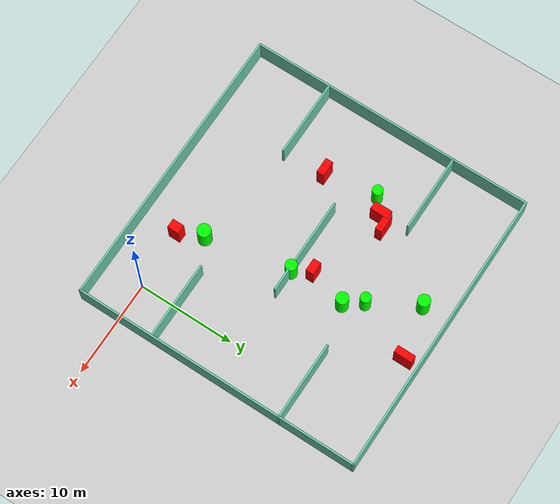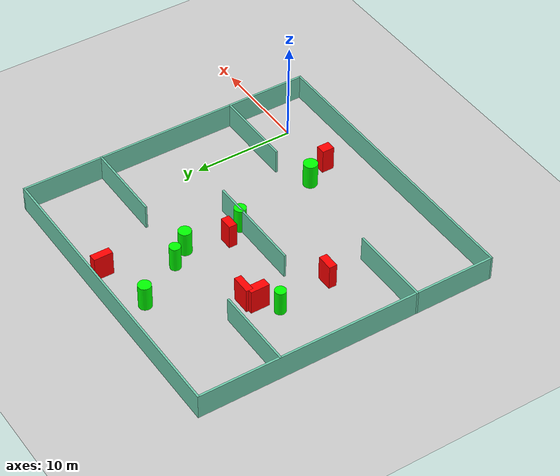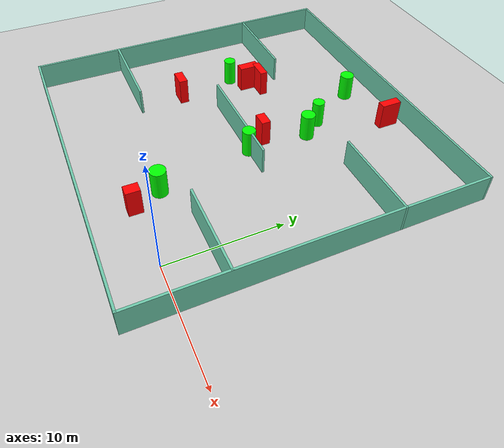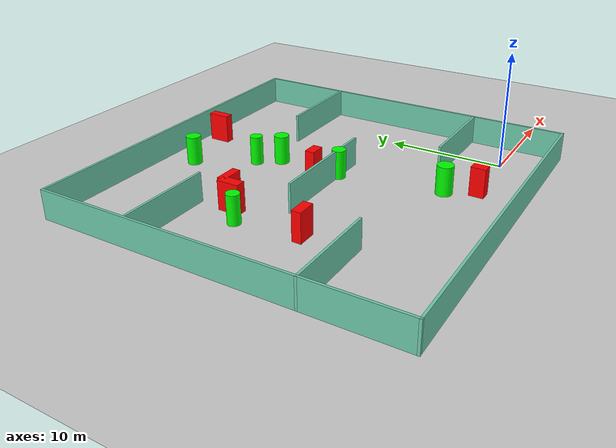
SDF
<sdf version="1.7">
 <world name="default">
  <light name="sun" type="directional">
   <pose>0 0 10 0 -0 0</pose>
   <diffuse>0.8 0.8 0.8 1</diffuse>
   <specular>0.2 0.2 0.2 1</specular>
   <attenuation>
    <range>1000</range>
    <constant>0.9</constant>
    <linear>0.01</linear>
    <quadratic>0.001</quadratic>
   </attenuation>
   <direction>-0.5 0.1 -0.9</direction>
   <spot><inner_angle>0</inner_angle><outer_angle>0</outer_angle><falloff>0</falloff></spot>
  </light>
  <model name="ground_plane">
   <static>1</static>
   <link name="link">
    <collision name="collision">
     <geometry><plane><normal>0 0 1</normal><size>100 100</size></plane></geometry>
     <surface>
      <contact><collide_bitmask>65535</collide_bitmask></contact>
      <friction><ode><mu>100</mu><mu2>50</mu2></ode></friction>
     </surface>
    </collision>
    <visual name="visual">
     <cast_shadows>0</cast_shadows>
     <geometry><plane><normal>0 0 1</normal><size>100 100</size></plane></geometry>
     <material>
      <script><uri>file://media/materials/scripts/gazebo.material</uri><name>Gazebo/Grey</name></script>
     </material>
    </visual>
   </link>
  </model>
  <gravity>0 0 -9.8</gravity>
  <magnetic_field>6e-06 2.3e-05 -4.2e-05</magnetic_field>
  <atmosphere type="adiabatic"/>
  <physics type="ode">
   <max_step_size>0.001</max_step_size>
   <real_time_factor>1</real_time_factor>
   <real_time_update_rate>1000</real_time_update_rate>
  </physics>
  <scene><ambient>0.4 0.4 0.4 1</ambient><background>0.7 0.7 0.7 1</background><shadows>1</shadows></scene>
  <spherical_coordinates>
   <surface_model>EARTH_WGS84</surface_model>
   <latitude_deg>0</latitude_deg>
   <longitude_deg>0</longitude_deg>
   <elevation>0</elevation>
   <heading_deg>0</heading_deg>
  </spherical_coordinates>
  <model name="my_base_walls">
   <link name="Wall_10">
    <collision name="Wall_10_Collision">
     <geometry><box><size>8.2 0.2 2.5</size></box></geometry>
     <pose>0 0 1.25 0 -0 0</pose>
    </collision>
    <visual name="Wall_10_Visual">
     <pose>0 0 1.25 0 -0 0</pose>
     <geometry><box><size>8.2 0.2 2.5</size></box></geometry>
     <material>
      <script><uri>file://media/materials/scripts/gazebo.material</uri><name>Gazebo/Grey</name></script>
      <ambient>0.435294 0.796078 0.67451 1</ambient>
     </material>
     <meta><layer>0</layer></meta>
    </visual>
    <pose>-11 -7 0 0 -0 0</pose>
   </link>
   <link name="Wall_12">
    <collision name="Wall_12_Collision">
     <geometry><box><size>8.2 0.2 2.5</size></box></geometry>
     <pose>0 0 1.25 0 -0 0</pose>
    </collision>
    <visual name="Wall_12_Visual">
     <pose>0 0 1.25 0 -0 0</pose>
     <geometry><box><size>8.2 0.2 2.5</size></box></geometry>
     <material>
      <script><uri>file://media/materials/scripts/gazebo.material</uri><name>Gazebo/Grey</name></script>
      <ambient>0.435294 0.796078 0.67451 1</ambient>
     </material>
     <meta><layer>0</layer></meta>
    </visual>
    <pose>-11 7 0 0 -0 0</pose>
   </link>
   <link name="Wall_14">
    <collision name="Wall_14_Collision">
     <geometry><box><size>8.2 0.2 2.5</size></box></geometry>
     <pose>0 0 1.25 0 -0 0</pose>
    </collision>
    <visual name="Wall_14_Visual">
     <pose>0 0 1.25 0 -0 0</pose>
     <geometry><box><size>8.2 0.2 2.5</size></box></geometry>
     <material>
      <script><uri>file://media/materials/scripts/gazebo.material</uri><name>Gazebo/Grey</name></script>
      <ambient>0.435294 0.796078 0.67451 1</ambient>
     </material>
     <meta><layer>0</layer></meta>
    </visual>
    <pose>11 7 0 0 -0 3.14159</pose>
   </link>
   <link name="Wall_16">
    <collision name="Wall_16_Collision">
     <geometry><box><size>10.2 0.2 2.5</size></box></geometry>
     <pose>0 0 1.25 0 -0 0</pose>
    </collision>
    <visual name="Wall_16_Visual">
     <pose>0 0 1.25 0 -0 0</pose>
     <geometry><box><size>10.2 0.2 2.5</size></box></geometry>
     <material>
      <script><uri>file://media/materials/scripts/gazebo.material</uri><name>Gazebo/Grey</name></script>
      <ambient>0.435294 0.796078 0.67451 1</ambient>
     </material>
     <meta><layer>0</layer></meta>
    </visual>
    <pose>0 0 0 0 -0 3.14159</pose>
   </link>
   <link name="Wall_2">
    <collision name="Wall_2_Collision">
     <geometry><box><size>30.2 0.2 2.5</size></box></geometry>
     <pose>0 0 1.25 0 -0 0</pose>
    </collision>
    <visual name="Wall_2_Visual">
     <pose>0 0 1.25 0 -0 0</pose>
     <geometry><box><size>30.2 0.2 2.5</size></box></geometry>
     <material>
      <script><uri>file://media/materials/scripts/gazebo.material</uri><name>Gazebo/Grey</name></script>
      <ambient>0.435294 0.796078 0.67451 1</ambient>
     </material>
     <meta><layer>0</layer></meta>
    </visual>
    <pose>0 -15 0 0 -0 3.14159</pose>
   </link>
   <link name="Wall_3">
    <collision name="Wall_3_Collision">
     <geometry><box><size>30.2 0.2 2.5</size></box></geometry>
     <pose>0 0 1.25 0 -0 0</pose>
    </collision>
    <visual name="Wall_3_Visual">
     <pose>0 0 1.25 0 -0 0</pose>
     <geometry><box><size>30.2 0.2 2.5</size></box></geometry>
     <material>
      <script><uri>file://media/materials/scripts/gazebo.material</uri><name>Gazebo/Grey</name></script>
      <ambient>0.435294 0.796078 0.67451 1</ambient>
     </material>
     <meta><layer>0</layer></meta>
    </visual>
    <pose>-15 0 0 0 -0 1.5708</pose>
   </link>
   <link name="Wall_4">
    <collision name="Wall_4_Collision">
     <geometry><box><size>30.2 0.2 2.5</size></box></geometry>
     <pose>0 0 1.25 0 -0 0</pose>
    </collision>
    <visual name="Wall_4_Visual">
     <pose>0 0 1.25 0 -0 0</pose>
     <geometry><box><size>30.2 0.2 2.5</size></box></geometry>
     <material>
      <script><uri>file://media/materials/scripts/gazebo.material</uri><name>Gazebo/Grey</name></script>
      <ambient>0.435294 0.796078 0.67451 1</ambient>
     </material>
     <meta><layer>0</layer></meta>
    </visual>
    <pose>0 15 0 0 -0 0</pose>
   </link>
   <link name="Wall_6">
    <collision name="Wall_6_Collision">
     <geometry><box><size>30.2 0.2 2.5</size></box></geometry>
     <pose>0 0 1.25 0 -0 0</pose>
    </collision>
    <visual name="Wall_6_Visual">
     <pose>0 0 1.25 0 -0 0</pose>
     <geometry><box><size>30.2 0.2 2.5</size></box></geometry>
     <material>
      <script><uri>file://media/materials/scripts/gazebo.material</uri><name>Gazebo/Grey</name></script>
      <ambient>0.435294 0.796078 0.67451 1</ambient>
     </material>
     <meta><layer>0</layer></meta>
    </visual>
    <pose>15 0 0 0 -0 1.5708</pose>
   </link>
   <link name="Wall_8">
    <collision name="Wall_8_Collision">
     <geometry><box><size>8.2 0.2 2.5</size></box></geometry>
     <pose>0 0 1.25 0 -0 0</pose>
    </collision>
    <visual name="Wall_8_Visual">
     <pose>0 0 1.25 0 -0 0</pose>
     <geometry><box><size>8.2 0.2 2.5</size></box></geometry>
     <material>
      <script><uri>file://media/materials/scripts/gazebo.material</uri><name>Gazebo/Grey</name></script>
      <ambient>0.435294 0.796078 0.67451 1</ambient>
     </material>
     <meta><layer>0</layer></meta>
    </visual>
    <pose>11 -7 0 0 -0 3.14159</pose>
   </link>
   <static>1</static>
   <pose>-11 11 0 0 -0 0</pose>
  </model>
  <model name="cylinder1">
   <static>1</static>
   <link name="link">
    <inertial>
     <mass>1</mass>
     <inertia><ixx>0.5</ixx><ixy>0</ixy><ixz>0</ixz><iyy>0.5</iyy><iyz>0</iyz><izz>1</izz></inertia>
    </inertial>
    <collision name="collision">
     <geometry><cylinder><radius>0.699447574833274</radius><length>2.5</length></cylinder></geometry>
    </collision>
    <visual name="visual">
     <geometry><cylinder><radius>0.699447574833274</radius><length>2.5</length></cylinder></geometry>
     <material>
      <ambient>0 1 0 1</ambient>
      <diffuse>0 1 0 1</diffuse>
      <specular>0.1 0.1 0.1 1</specular>
      <emissive>0 0 0 0</emissive>
     </material>
    </visual>
   </link>
   <pose>-7.123919649026549 2.2603536589269613 1.25 0 0 0</pose>
  </model>
  <model name="cylinder2">
   <static>1</static>
   <link name="link">
    <inertial>
     <mass>1</mass>
     <inertia><ixx>0.5</ixx><ixy>0</ixy><ixz>0</ixz><iyy>0.5</iyy><iyz>0</iyz><izz>1</izz></inertia>
    </inertial>
    <collision name="collision">
     <geometry><cylinder><radius>0.543408315600712</radius><length>2.5</length></cylinder></geometry>
    </collision>
    <visual name="visual">
     <geometry><cylinder><radius>0.543408315600712</radius><length>2.5</length></cylinder></geometry>
     <material>
      <ambient>0 1 0 1</ambient>
      <diffuse>0 1 0 1</diffuse>
      <specular>0.1 0.1 0.1 1</specular>
      <emissive>0 0 0 0</emissive>
     </material>
    </visual>
   </link>
   <pose>-9.860057637646637 18.464437211352568 1.25 0 0 0</pose>
  </model>
  <model name="cylinder3">
   <static>1</static>
   <link name="link">
    <inertial>
     <mass>1</mass>
     <inertia><ixx>0.5</ixx><ixy>0</ixy><ixz>0</ixz><iyy>0.5</iyy><iyz>0</iyz><izz>1</izz></inertia>
    </inertial>
    <collision name="collision">
     <geometry><cylinder><radius>0.5424629595707172</radius><length>2.5</length></cylinder></geometry>
    </collision>
    <visual name="visual">
     <geometry><cylinder><radius>0.5424629595707172</radius><length>2.5</length></cylinder></geometry>
     <material>
      <ambient>0 1 0 1</ambient>
      <diffuse>0 1 0 1</diffuse>
      <specular>0.1 0.1 0.1 1</specular>
      <emissive>0 0 0 0</emissive>
     </material>
    </visual>
   </link>
   <pose>-19.446654008455774 13.679186052899109 1.25 0 0 0</pose>
  </model>
  <model name="cylinder4">
   <static>1</static>
   <link name="link">
    <inertial>
     <mass>1</mass>
     <inertia><ixx>0.5</ixx><ixy>0</ixy><ixz>0</ixz><iyy>0.5</iyy><iyz>0</iyz><izz>1</izz></inertia>
    </inertial>
    <collision name="collision">
     <geometry><cylinder><radius>0.6340784978242725</radius><length>2.5</length></cylinder></geometry>
    </collision>
    <visual name="visual">
     <geometry><cylinder><radius>0.6340784978242725</radius><length>2.5</length></cylinder></geometry>
     <material>
      <ambient>0 1 0 1</ambient>
      <diffuse>0 1 0 1</diffuse>
      <specular>0.1 0.1 0.1 1</specular>
      <emissive>0 0 0 0</emissive>
     </material>
    </visual>
   </link>
   <pose>-12.56372242720449 23.140467332024908 1.25 0 0 0</pose>
  </model>
  <model name="cylinder5">
   <static>1</static>
   <link name="link">
    <inertial>
     <mass>1</mass>
     <inertia><ixx>0.5</ixx><ixy>0</ixy><ixz>0</ixz><iyy>0.5</iyy><iyz>0</iyz><izz>1</izz></inertia>
    </inertial>
    <collision name="collision">
     <geometry><cylinder><radius>0.6365140636919248</radius><length>2.5</length></cylinder></geometry>
    </collision>
    <visual name="visual">
     <geometry><cylinder><radius>0.6365140636919248</radius><length>2.5</length></cylinder></geometry>
     <material>
      <ambient>0 1 0 1</ambient>
      <diffuse>0 1 0 1</diffuse>
      <specular>0.1 0.1 0.1 1</specular>
      <emissive>0 0 0 0</emissive>
     </material>
    </visual>
   </link>
   <pose>-8.619735352043467 16.693746255883603 1.25 0 0 0</pose>
  </model>
  <model name="cylinder6">
   <static>1</static>
   <link name="link">
    <inertial>
     <mass>1</mass>
     <inertia><ixx>0.5</ixx><ixy>0</ixy><ixz>0</ixz><iyy>0.5</iyy><iyz>0</iyz><izz>1</izz></inertia>
    </inertial>
    <collision name="collision">
     <geometry><cylinder><radius>0.5951491585066635</radius><length>2.5</length></cylinder></geometry>
    </collision>
    <visual name="visual">
     <geometry><cylinder><radius>0.5951491585066635</radius><length>2.5</length></cylinder></geometry>
     <material>
      <ambient>0 1 0 1</ambient>
      <diffuse>0 1 0 1</diffuse>
      <specular>0.1 0.1 0.1 1</specular>
      <emissive>0 0 0 0</emissive>
     </material>
    </visual>
   </link>
   <pose>-8.732633187643547 10.95994020146222 1.25 0 0 0</pose>
  </model>
  <model name="box1">
   <static>1</static>
   <link name="link">
    <inertial>
     <mass>1</mass>
     <inertia><ixx>0.083</ixx><ixy>0</ixy><ixz>0</ixz><iyy>0.083</iyy><iyz>0</iyz><izz>0.083</izz></inertia>
    </inertial>
    <collision name="collision">
     <geometry><box><size>1.3484753333278512 0.8263344523183059 2.5</size></box></geometry>
    </collision>
    <visual name="visual">
     <geometry><box><size>1.3484753333278512 0.8263344523183059 2.5</size></box></geometry>
     <material>
      <ambient>1 0 0 1</ambient>
      <diffuse>1 0 0 1</diffuse>
      <specular>0.1 0.1 0.1 1</specular>
      <emissive>0 0 0 0</emissive>
     </material>
    </visual>
    <sensor name="my_contact" type="contact">
     <contact><collision>box_collision</collision><topic>__default_topic__</topic></contact>
    </sensor>
   </link>
   <pose>-9.736109192014055 12.775292860471998 1.25 0 0 0</pose>
  </model>
  <model name="box2">
   <static>1</static>
   <link name="link">
    <inertial>
     <mass>1</mass>
     <inertia><ixx>0.083</ixx><ixy>0</ixy><ixz>0</ixz><iyy>0.083</iyy><iyz>0</iyz><izz>0.083</izz></inertia>
    </inertial>
    <collision name="collision">
     <geometry><box><size>0.9509282185969841 1.2355431988947254 2.5</size></box></geometry>
    </collision>
    <visual name="visual">
     <geometry><box><size>0.9509282185969841 1.2355431988947254 2.5</size></box></geometry>
     <material>
      <ambient>1 0 0 1</ambient>
      <diffuse>1 0 0 1</diffuse>
      <specular>0.1 0.1 0.1 1</specular>
      <emissive>0 0 0 0</emissive>
     </material>
    </visual>
    <sensor name="my_contact" type="contact">
     <contact><collision>box_collision</collision><topic>__default_topic__</topic></contact>
    </sensor>
   </link>
   <pose>-6.003031799178984 -0.17541729802799377 1.25 0 0 0</pose>
  </model>
  <model name="box3">
   <static>1</static>
   <link name="link">
    <inertial>
     <mass>1</mass>
     <inertia><ixx>0.083</ixx><ixy>0</ixy><ixz>0</ixz><iyy>0.083</iyy><iyz>0</iyz><izz>0.083</izz></inertia>
    </inertial>
    <collision name="collision">
     <geometry><box><size>0.8705394636724773 1.884171261397917 2.5</size></box></geometry>
    </collision>
    <visual name="visual">
     <geometry><box><size>0.8705394636724773 1.884171261397917 2.5</size></box></geometry>
     <material>
      <ambient>1 0 0 1</ambient>
      <diffuse>1 0 0 1</diffuse>
      <specular>0.1 0.1 0.1 1</specular>
      <emissive>0 0 0 0</emissive>
     </material>
    </visual>
    <sensor name="my_contact" type="contact">
     <contact><collision>box_collision</collision><topic>__default_topic__</topic></contact>
    </sensor>
   </link>
   <pose>-17.931716944040854 15.035335774905864 1.25 0 0 0</pose>
  </model>
  <model name="box4">
   <static>1</static>
   <link name="link">
    <inertial>
     <mass>1</mass>
     <inertia><ixx>0.083</ixx><ixy>0</ixy><ixz>0</ixz><iyy>0.083</iyy><iyz>0</iyz><izz>0.083</izz></inertia>
    </inertial>
    <collision name="collision">
     <geometry><box><size>1.9250434865428665 0.6948324699586618 2.5</size></box></geometry>
    </collision>
    <visual name="visual">
     <geometry><box><size>1.9250434865428665 0.6948324699586618 2.5</size></box></geometry>
     <material>
      <ambient>1 0 0 1</ambient>
      <diffuse>1 0 0 1</diffuse>
      <specular>0.1 0.1 0.1 1</specular>
      <emissive>0 0 0 0</emissive>
     </material>
    </visual>
    <sensor name="my_contact" type="contact">
     <contact><collision>box_collision</collision><topic>__default_topic__</topic></contact>
    </sensor>
   </link>
   <pose>-17.036117444797043 15.882831729966814 1.25 0 0 0</pose>
  </model>
  <model name="box5">
   <static>1</static>
   <link name="link">
    <inertial>
     <mass>1</mass>
     <inertia><ixx>0.083</ixx><ixy>0</ixy><ixz>0</ixz><iyy>0.083</iyy><iyz>0</iyz><izz>0.083</izz></inertia>
    </inertial>
    <collision name="collision">
     <geometry><box><size>1.6169548500894029 0.7914983197878616 2.5</size></box></geometry>
    </collision>
    <visual name="visual">
     <geometry><box><size>1.6169548500894029 0.7914983197878616 2.5</size></box></geometry>
     <material>
      <ambient>1 0 0 1</ambient>
      <diffuse>1 0 0 1</diffuse>
      <specular>0.1 0.1 0.1 1</specular>
      <emissive>0 0 0 0</emissive>
     </material>
    </visual>
    <sensor name="my_contact" type="contact">
     <contact><collision>box_collision</collision><topic>__default_topic__</topic></contact>
    </sensor>
   </link>
   <pose>-18.681020376638177 8.228206647679801 1.25 0 0 0</pose>
  </model>
  <model name="box6">
   <static>1</static>
   <link name="link">
    <inertial>
     <mass>1</mass>
     <inertia><ixx>0.083</ixx><ixy>0</ixy><ixz>0</ixz><iyy>0.083</iyy><iyz>0</iyz><izz>0.083</izz></inertia>
    </inertial>
    <collision name="collision">
     <geometry><box><size>0.752627272507104 1.881184309237852 2.5</size></box></geometry>
    </collision>
    <visual name="visual">
     <geometry><box><size>0.752627272507104 1.881184309237852 2.5</size></box></geometry>
     <material>
      <ambient>1 0 0 1</ambient>
      <diffuse>1 0 0 1</diffuse>
      <specular>0.1 0.1 0.1 1</specular>
      <emissive>0 0 0 0</emissive>
     </material>
    </visual>
    <sensor name="my_contact" type="contact">
     <contact><collision>box_collision</collision><topic>__default_topic__</topic></contact>
    </sensor>
   </link>
   <pose>-7.233370403087012 24.366240804504955 1.25 0 0 0</pose>
  </model>
 </world>
</sdf>
